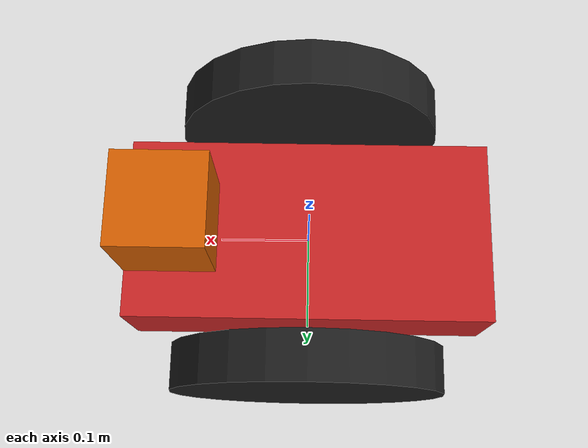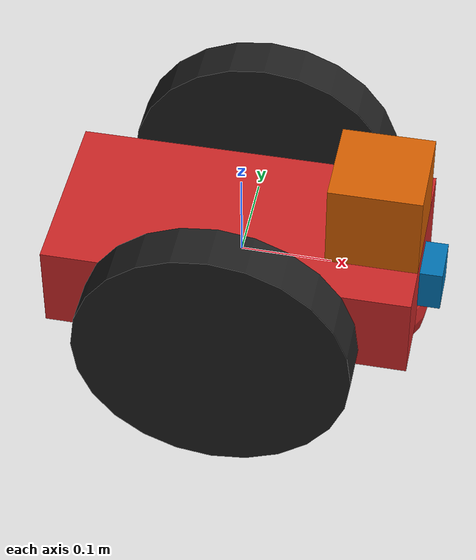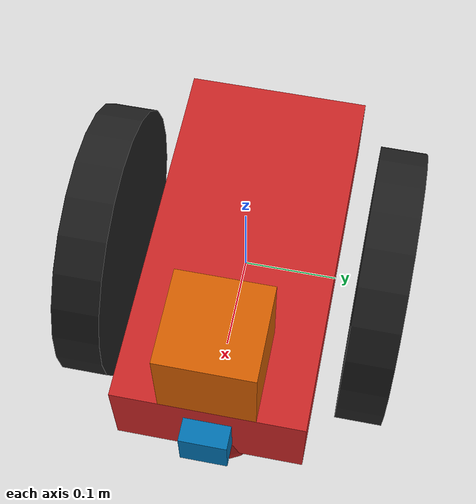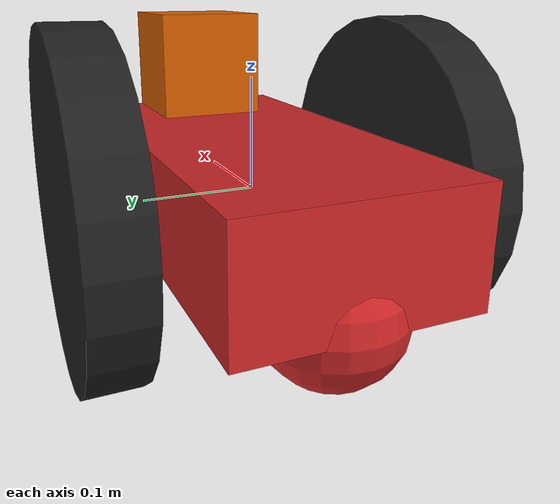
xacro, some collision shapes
<?xml version='1.0'?>

<robot name="my_robot" xmlns:xacro="http://www.ros.org/wiki/xacro">
<xacro:include filename="$(find my_robot)/urdf/my_robot.gazebo" />

  <link name="robot_footprint"></link>

  <joint name="robot_footprint_joint" type="fixed">
    <origin xyz="0 0 0" rpy="0 0 0" />
    <parent link="robot_footprint"/>
    <child link="chassis" />
  </joint>

  <link name='chassis'>
    <pose>0 0 0.1 0 0 0</pose>

    <inertial>
      <mass value="15.0"/>
      <origin xyz="0.0 0 0" rpy=" 0 0 0"/>
      <inertia
          ixx="0.1" ixy="0" ixz="0"
          iyy="0.1" iyz="0"
          izz="0.1"
      />
    </inertial>

    <collision name='collision'>
      <origin xyz="0 0 0" rpy=" 0 0 0"/>
      <geometry>
        <box size=".4 .2 .1"/>
      </geometry>
    </collision>

    <visual name='chassis_visual'>
      <origin xyz="0 0 0" rpy=" 0 0 0"/>
      <geometry>
        <box size=".4 .2 .1"/>
      </geometry>
    </visual>

    <collision name='back_caster_collision'>
      <origin xyz="-0.15 0 -0.05" rpy=" 0 0 0"/>
      <geometry>
        <sphere radius="0.06"/>
      </geometry>
    </collision>

    <visual name='back_caster_visual'>
      <origin xyz="-0.15 0 -0.05" rpy=" 0 0 0"/>
      <geometry>
        <sphere radius="0.06"/>
      </geometry>
    </visual>

    <collision name='front_caster_collision'>
      <origin xyz="0.15 0 -0.05" rpy=" 0 0 0"/>
      <geometry>
        <sphere radius="0.06"/>
      </geometry>
    </collision>

    <visual name='front_caster_visual'>
      <origin xyz="0.15 0 -0.05" rpy=" 0 0 0"/>
      <geometry>
        <sphere radius="0.06"/>
      </geometry>
    </visual>

  </link>

  <link name='wheel_left'>
    <pose>0 0 0 0 0 0</pose>

    <inertial>
      <mass value="5.0"/>
      <origin xyz="0.0 0 0" rpy=" 0 1.5707 1.5707"/>
      <inertia
          ixx="0.1" ixy="0" ixz="0"
          iyy="0.1" iyz="0"
          izz="0.1"
      />
    </inertial>

    <collision name='collision'>
      <origin xyz="0 0 0" rpy=" 0 1.5707 1.5707"/>
      <geometry>
        <cylinder radius="0.15" length="0.05"/>
      </geometry>
    </collision>

    <visual name='wheel_left_visual'>
      <origin xyz="0 0 0" rpy=" 0 1.5707 1.5707"/>
      <geometry>
        <cylinder radius="0.15" length="0.05"/>
      </geometry>
    </visual>
  </link>

  <link name='wheel_right'>
    <pose>0 0 0 0 0 0</pose>

    <inertial>
      <mass value="5.0"/>
      <origin xyz="0.0 0 0" rpy=" 0 1.5707 1.5707"/>
      <inertia
          ixx="0.1" ixy="0" ixz="0"
          iyy="0.1" iyz="0"
          izz="0.1"
      />
    </inertial>

    <collision name='collision'>
      <origin xyz="0 0 0" rpy=" 0 1.5707 1.5707"/>
      <geometry>
        <cylinder radius="0.15" length="0.05"/>
      </geometry>
    </collision>

    <visual name='wheel_right_visual'>
      <origin xyz="0 0 0" rpy=" 0 1.5707 1.5707"/>
      <geometry>
        <cylinder radius="0.15" length="0.05"/>
      </geometry>
    </visual>
  </link>

  <joint type="continuous" name="left_wheel_hinge">
    <origin xyz="0 0.15 0" rpy="0 0 0"/>
    <child link="wheel_left"/>
    <parent link="chassis"/>
    <axis xyz="0 1 0" rpy="0 0 0"/>
    <limit effort="10000" velocity="1000"/>
    <dynamics damping="1.0" friction="1.0"/>
  </joint>

  <joint type="continuous" name="right_wheel_hinge">
    <origin xyz="0 -0.15 0" rpy="0 0 0"/>
    <child link="wheel_right"/>
    <parent link="chassis"/>
    <axis xyz="0 1 0" rpy="0 0 0"/>
    <limit effort="10000" velocity="1000"/>
    <dynamics damping="1.0" friction="1.0"/>
  </joint>

  <link name='camera'>
    <pose>0 0 0 0 0 0</pose>

    <inertial>
      <mass value="0.1"/>
      <origin xyz="0.0 0 0" rpy="0.0 0 0"/>
      <inertia
          ixx="1e-6" ixy="0" ixz="0"
          iyy="1e-6" iyz="0"
          izz="1e-6"
      />
    </inertial>

    <collision name='collision'>
      <origin xyz="0 0 0" rpy=" 0 0 0"/>
      <geometry>
        <box size="0.05 0.05 0.05"/>
      </geometry>
    </collision>

    <visual name='camera_visual'>
      <origin xyz="0 0 0" rpy="0 0 0"/>
      <geometry>
        <box size="0.05 0.05 0.05"/>
      </geometry>
    </visual>
  </link>

  <joint type="fixed" name="camera_joint">
    <origin xyz="0.2 0 0" rpy="0 0 0"/>
    <child link="camera"/>
    <parent link="chassis"/>
    <axis xyz="0 1 0" rpy="0 0 0"/>
    <limit effort="10000" velocity="1000"/>
    <dynamics damping="1.0" friction="1.0"/>
  </joint>

  <link name='hokuyo'>
    <pose>0 0 0 0 0 0</pose>

    <inertial>
      <mass value="1e-5"/>
      <origin xyz="0.0 0 0" rpy="0.0 0 0"/>
      <inertia
          ixx="1e-6" ixy="0" ixz="0"
          iyy="1e-6" iyz="0"
          izz="1e-6"
      />
    </inertial>

    <collision name='collision'>
      <origin xyz="0 0 0" rpy=" 0 0 0"/>
      <geometry>
        <box size="0.1 0.1 0.1"/>
      </geometry>
    </collision>

    <visual name='hokuyo_visual'>
      <origin xyz="0 0 0" rpy="0 0 0"/>
      <geometry>
        <mesh filename="package://my_robot/meshes/hokuyo.dae"/>
      </geometry>
    </visual>
  </link>

  <joint type="fixed" name="hokuyo_joint">
    <origin xyz="0.15 0.0 0.1" rpy="0 0 0"/>
    <child link="hokuyo"/>
    <parent link="chassis"/>
    <axis xyz="0 1 0" rpy="0 0 0"/>
    <limit effort="10000" velocity="1000"/>
    <dynamics damping="1.0" friction="1.0"/>
  </joint>

  <gazebo reference="chassis">
  <material>Gazebo/Red</material>
  </gazebo>

  <gazebo reference="wheel_left">
  <material>Gazebo/Black</material>
  </gazebo>

  <gazebo reference="wheel_right">
  <material>Gazebo/Black</material>
  </gazebo>

</robot>
